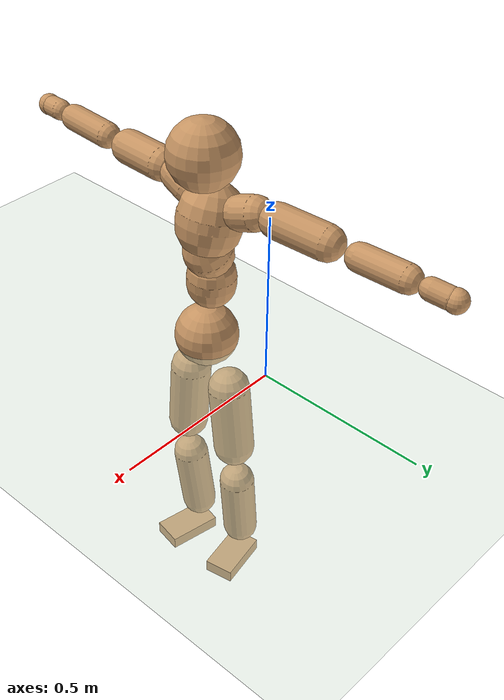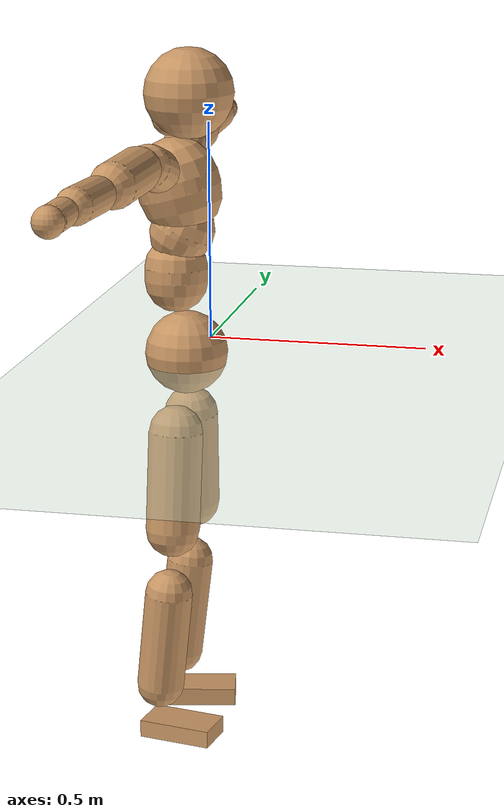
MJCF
<mujoco model="humanoid">
  <compiler coordinate="local"/>
  <default>
    <joint damping="0.0" armature="0.01" stiffness="0.0" limited="true"/>
    <geom conaffinity="1" condim="3" contype="7" margin="0.001" rgba="0.8 0.6 .4 1"/>
  </default>
  <asset>
    <texture type="skybox" builtin="gradient" rgb1=".4 .5 .6" rgb2="0 0 0" width="100" height="100"/>
    <texture builtin="flat" height="1278" mark="cross" markrgb="1 1 1" name="texgeom" random="0.01" rgb1="0.8 0.6 0.4" rgb2="0.8 0.6 0.4" type="cube" width="127"/>
    <texture builtin="checker" height="100" name="texplane" rgb1="0 0 0" rgb2="0.8 0.8 0.8" type="2d" width="100"/>
    <material name="MatPlane" reflectance="0.5" shininess="1" specular="1" texrepeat="60 60" texture="texplane"/>
    <material name="geom" texture="texgeom" texuniform="true"/>
  </asset>
  <worldbody>
    <light cutoff="100" diffuse="1 1 1" dir="-0 0 -1.3" directional="true" exponent="1" pos="0 0 1.3" specular=".1 .1 .1"/>
    <geom conaffinity="1" condim="3" name="floor" pos="0 0 0" rgba="0.8 0.9 0.8 1" size="100 100 .2" type="plane" material="MatPlane"/>
    <body name="Pelvis" pos="-0.0016 -0.2241 0.0246">
      <freejoint name="Pelvis"/>
      <geom type="sphere" contype="1" conaffinity="1" density="500" size="0.0918" pos="0.0000 0.0000 0.0000" name="Pelvis"/>
      <body name="L_Hip" pos="-0.0098 0.0695 -0.0913">
        <joint name="L_Hip_x" type="hinge" pos="0 0 0" axis="1 0 0" stiffness="800" damping="80" armature="0.02" range="-180.0000 180.0000"/>
        <joint name="L_Hip_y" type="hinge" pos="0 0 0" axis="0 1 0" stiffness="800" damping="80" armature="0.02" range="-180.0000 180.0000"/>
        <joint name="L_Hip_z" type="hinge" pos="0 0 0" axis="0 0 1" stiffness="800" damping="80" armature="0.02" range="-180.0000 180.0000"/>
        <geom type="capsule" contype="1" conaffinity="1" density="500" fromto="-0.0008 0.0063 -0.0723 -0.0034 0.0251 -0.2893" size="0.0606" name="L_Hip"/>
        <body name="L_Knee" pos="-0.0042 0.0314 -0.3616">
          <joint name="L_Knee_x" type="hinge" pos="0 0 0" axis="1 0 0" stiffness="800" damping="80" armature="0.02" range="-180.0000 180.0000"/>
          <joint name="L_Knee_y" type="hinge" pos="0 0 0" axis="0 1 0" stiffness="800" damping="80" armature="0.02" range="-180.0000 180.0000"/>
          <joint name="L_Knee_z" type="hinge" pos="0 0 0" axis="0 0 1" stiffness="800" damping="80" armature="0.02" range="-180.0000 180.0000"/>
          <geom type="capsule" contype="1" conaffinity="1" density="500" fromto="-0.0086 -0.0024 -0.0756 -0.0345 -0.0098 -0.3025" size="0.0528" name="L_Knee"/>
          <body name="L_Ankle" pos="-0.0431 -0.0122 -0.3781">
            <joint name="L_Ankle_x" type="hinge" pos="0 0 0" axis="1 0 0" stiffness="800" damping="80" armature="0.02" range="-180.0000 180.0000"/>
            <joint name="L_Ankle_y" type="hinge" pos="0 0 0" axis="0 1 0" stiffness="800" damping="80" armature="0.02" range="-180.0000 180.0000"/>
            <joint name="L_Ankle_z" type="hinge" pos="0 0 0" axis="0 0 1" stiffness="800" damping="80" armature="0.02" range="-180.0000 180.0000"/>
            <geom type="box" contype="1" conaffinity="1" density="500" pos="0.0572 0.0115 -0.0268" size="0.0815 0.0453 0.0201" quat="0.9951 0.0000 0.0000 0.0988" name="L_Ankle"/>
            <body name="L_Toe" pos="0.1144 0.0229 -0.0536">
              <joint name="L_Toe_x" type="hinge" pos="0 0 0" axis="1 0 0" stiffness="500" damping="50" armature="0.02" range="-180.0000 180.0000"/>
              <joint name="L_Toe_y" type="hinge" pos="0 0 0" axis="0 1 0" stiffness="500" damping="50" armature="0.02" range="-180.0000 180.0000"/>
              <joint name="L_Toe_z" type="hinge" pos="0 0 0" axis="0 0 1" stiffness="500" damping="50" armature="0.02" range="-180.0000 180.0000"/>
              <geom type="box" contype="1" conaffinity="1" density="500" pos="0.0000 0.0000 0.0263" size="0.0009 0.0023 0.001" quat="0.9944 0.0000 0.0000 0.1054" name="L_Toe"/>
            </body>
          </body>
        </body>
      </body>
      <body name="R_Hip" pos="-0.0066 -0.0672 -0.0904">
        <joint name="R_Hip_x" type="hinge" pos="0 0 0" axis="1 0 0" stiffness="800" damping="80" armature="0.02" range="-180.0000 180.0000"/>
        <joint name="R_Hip_y" type="hinge" pos="0 0 0" axis="0 1 0" stiffness="800" damping="80" armature="0.02" range="-180.0000 180.0000"/>
        <joint name="R_Hip_z" type="hinge" pos="0 0 0" axis="0 0 1" stiffness="800" damping="80" armature="0.02" range="-180.0000 180.0000"/>
        <geom type="capsule" contype="1" conaffinity="1" density="500" fromto="-0.0015 -0.0072 -0.0738 -0.0059 -0.0289 -0.2954" size="0.0599" name="R_Hip"/>
        <body name="R_Knee" pos="-0.0074 -0.0361 -0.3692">
          <joint name="R_Knee_x" type="hinge" pos="0 0 0" axis="1 0 0" stiffness="800" damping="80" armature="0.02" range="-180.0000 180.0000"/>
          <joint name="R_Knee_y" type="hinge" pos="0 0 0" axis="0 1 0" stiffness="800" damping="80" armature="0.02" range="-180.0000 180.0000"/>
          <joint name="R_Knee_z" type="hinge" pos="0 0 0" axis="0 0 1" stiffness="800" damping="80" armature="0.02" range="-180.0000 180.0000"/>
          <geom type="capsule" contype="1" conaffinity="1" density="500" fromto="-0.0083 0.0029 -0.0757 -0.0333 0.0117 -0.3026" size="0.0531" name="R_Knee"/>
          <body name="R_Ankle" pos="-0.0416 0.0147 -0.3783">
            <joint name="R_Ankle_x" type="hinge" pos="0 0 0" axis="1 0 0" stiffness="800" damping="80" armature="0.02" range="-180.0000 180.0000"/>
            <joint name="R_Ankle_y" type="hinge" pos="0 0 0" axis="0 1 0" stiffness="800" damping="80" armature="0.02" range="-180.0000 180.0000"/>
            <joint name="R_Ankle_z" type="hinge" pos="0 0 0" axis="0 0 1" stiffness="800" damping="80" armature="0.02" range="-180.0000 180.0000"/>
            <geom type="box" contype="1" conaffinity="1" density="500" pos="0.0589 -0.0107 -0.0228" size="0.0828 0.046 0.0196" quat="0.9960 0.0000 0.0000 -0.0898" name="R_Ankle"/>
            <body name="R_Toe" pos="0.1179 -0.0214 -0.0455">
              <joint name="R_Toe_x" type="hinge" pos="0 0 0" axis="1 0 0" stiffness="500" damping="50" armature="0.02" range="-180.0000 180.0000"/>
              <joint name="R_Toe_y" type="hinge" pos="0 0 0" axis="0 1 0" stiffness="500" damping="50" armature="0.02" range="-180.0000 180.0000"/>
              <joint name="R_Toe_z" type="hinge" pos="0 0 0" axis="0 0 1" stiffness="500" damping="50" armature="0.02" range="-180.0000 180.0000"/>
              <geom type="box" contype="1" conaffinity="1" density="500" pos="0.0000 0.0000 0.0247" size="0.0009 0.0023 0.0011" quat="0.9968 0.0000 0.0000 -0.0803" name="R_Toe"/>
            </body>
          </body>
        </body>
      </body>
      <body name="Torso" pos="-0.0215 -0.0026 0.1063">
        <joint name="Torso_x" type="hinge" pos="0 0 0" axis="1 0 0" stiffness="1000" damping="100" armature="0.02" range="-180.0000 180.0000"/>
        <joint name="Torso_y" type="hinge" pos="0 0 0" axis="0 1 0" stiffness="1000" damping="100" armature="0.02" range="-180.0000 180.0000"/>
        <joint name="Torso_z" type="hinge" pos="0 0 0" axis="0 0 1" stiffness="1000" damping="100" armature="0.02" range="-180.0000 180.0000"/>
        <geom type="capsule" contype="1" conaffinity="1" density="500" fromto="0.0003 0.0028 0.0830 0.0002 0.0019 0.0553" size="0.0701" name="Torso"/>
        <body name="Spine" pos="0.0004 0.0047 0.1384">
          <joint name="Spine_x" type="hinge" pos="0 0 0" axis="1 0 0" stiffness="1000" damping="100" armature="0.02" range="-180.0000 180.0000"/>
          <joint name="Spine_y" type="hinge" pos="0 0 0" axis="0 1 0" stiffness="1000" damping="100" armature="0.02" range="-180.0000 180.0000"/>
          <joint name="Spine_z" type="hinge" pos="0 0 0" axis="0 0 1" stiffness="1000" damping="100" armature="0.02" range="-180.0000 180.0000"/>
          <geom type="capsule" contype="1" conaffinity="1" density="500" fromto="0.0163 0.0011 0.0312 0.0109 0.0007 0.0208" size="0.0699" name="Spine"/>
          <body name="Chest" pos="0.0272 0.0018 0.0521">
            <joint name="Chest_x" type="hinge" pos="0 0 0" axis="1 0 0" stiffness="1000" damping="100" armature="0.02" range="-180.0000 180.0000"/>
            <joint name="Chest_y" type="hinge" pos="0 0 0" axis="0 1 0" stiffness="1000" damping="100" armature="0.02" range="-180.0000 180.0000"/>
            <joint name="Chest_z" type="hinge" pos="0 0 0" axis="0 0 1" stiffness="1000" damping="100" armature="0.02" range="-180.0000 180.0000"/>
            <geom type="capsule" contype="1" conaffinity="1" density="500" fromto="-0.0246 -0.0009 0.0884 -0.0164 -0.0006 0.0589" size="0.0921" name="Chest"/>
            <body name="Neck" pos="-0.0471 -0.0024 0.2093">
              <joint name="Neck_x" type="hinge" pos="0 0 0" axis="1 0 0" stiffness="500" damping="50" armature="0.02" range="-180.0000 180.0000"/>
              <joint name="Neck_y" type="hinge" pos="0 0 0" axis="0 1 0" stiffness="500" damping="50" armature="0.02" range="-180.0000 180.0000"/>
              <joint name="Neck_z" type="hinge" pos="0 0 0" axis="0 0 1" stiffness="500" damping="50" armature="0.02" range="-180.0000 180.0000"/>
              <geom type="capsule" contype="1" conaffinity="1" density="500" fromto="0.0102 0.0009 0.0131 0.0409 0.0036 0.0522" size="0.0409" name="Neck"/>
              <body name="Head" pos="0.0511 0.0045 0.0653">
                <joint name="Head_x" type="hinge" pos="0 0 0" axis="1 0 0" stiffness="500" damping="50" armature="0.02" range="-180.0000 180.0000"/>
                <joint name="Head_y" type="hinge" pos="0 0 0" axis="0 1 0" stiffness="500" damping="50" armature="0.02" range="-180.0000 180.0000"/>
                <joint name="Head_z" type="hinge" pos="0 0 0" axis="0 0 1" stiffness="500" damping="50" armature="0.02" range="-180.0000 180.0000"/>
                <geom type="sphere" contype="1" conaffinity="1" density="500" size="0.0983" pos="0.0000 0.0000 0.0000" name="Head"/>
              </body>
            </body>
            <body name="L_Thorax" pos="-0.0354 0.0735 0.1176">
              <joint name="L_Thorax_x" type="hinge" pos="0 0 0" axis="1 0 0" stiffness="500" damping="50" armature="0.02" range="-180.0000 180.0000"/>
              <joint name="L_Thorax_y" type="hinge" pos="0 0 0" axis="0 1 0" stiffness="500" damping="50" armature="0.02" range="-180.0000 180.0000"/>
              <joint name="L_Thorax_z" type="hinge" pos="0 0 0" axis="0 0 1" stiffness="500" damping="50" armature="0.02" range="-180.0000 180.0000"/>
              <geom type="capsule" contype="1" conaffinity="1" density="500" fromto="-0.0014 0.0168 0.0059 -0.0055 0.0672 0.0236" size="0.0486" name="L_Thorax"/>
              <body name="L_Shoulder" pos="-0.0068 0.084 0.0295">
                <joint name="L_Shoulder_x" type="hinge" pos="0 0 0" axis="1 0 0" stiffness="500" damping="50" armature="0.02" range="-720.0000 720.0000"/>
                <joint name="L_Shoulder_y" type="hinge" pos="0 0 0" axis="0 1 0" stiffness="500" damping="50" armature="0.02" range="-720.0000 720.0000"/>
                <joint name="L_Shoulder_z" type="hinge" pos="0 0 0" axis="0 0 1" stiffness="500" damping="50" armature="0.02" range="-720.0000 720.0000"/>
                <geom type="capsule" contype="1" conaffinity="1" density="500" fromto="-0.0053 0.0491 -0.0022 -0.0210 0.1963 -0.0089" size="0.0486" name="L_Shoulder"/>
                <body name="L_Elbow" pos="-0.0263 0.2453 -0.0111">
                  <joint name="L_Elbow_x" type="hinge" pos="0 0 0" axis="1 0 0" stiffness="500" damping="50" armature="0.02" range="-720.0000 720.0000"/>
                  <joint name="L_Elbow_y" type="hinge" pos="0 0 0" axis="0 1 0" stiffness="500" damping="50" armature="0.02" range="-720.0000 720.0000"/>
                  <joint name="L_Elbow_z" type="hinge" pos="0 0 0" axis="0 0 1" stiffness="500" damping="50" armature="0.02" range="-720.0000 720.0000"/>
                  <geom type="capsule" contype="1" conaffinity="1" density="500" fromto="-0.0001 0.0467 0.0016 -0.0005 0.1867 0.0064" size="0.0382" name="L_Elbow"/>
                  <body name="L_Wrist" pos="-0.0007 0.2334 0.008">
                    <joint name="L_Wrist_x" type="hinge" pos="0 0 0" axis="1 0 0" stiffness="300" damping="30" armature="0.02" range="-180.0000 180.0000"/>
                    <joint name="L_Wrist_y" type="hinge" pos="0 0 0" axis="0 1 0" stiffness="300" damping="30" armature="0.02" range="-180.0000 180.0000"/>
                    <joint name="L_Wrist_z" type="hinge" pos="0 0 0" axis="0 0 1" stiffness="300" damping="30" armature="0.02" range="-180.0000 180.0000"/>
                    <geom type="capsule" contype="1" conaffinity="1" density="500" fromto="-0.0027 0.0157 -0.0018 -0.0106 0.0628 -0.0072" size="0.0298" name="L_Wrist"/>
                    <body name="L_Hand" pos="-0.0133 0.0785 -0.009">
                      <joint name="L_Hand_x" type="hinge" pos="0 0 0" axis="1 0 0" stiffness="300" damping="30" armature="0.02" range="-180.0000 180.0000"/>
                      <joint name="L_Hand_y" type="hinge" pos="0 0 0" axis="0 1 0" stiffness="300" damping="30" armature="0.02" range="-180.0000 180.0000"/>
                      <joint name="L_Hand_z" type="hinge" pos="0 0 0" axis="0 0 1" stiffness="300" damping="30" armature="0.02" range="-180.0000 180.0000"/>
                      <geom type="sphere" contype="1" conaffinity="1" density="500" size="0.0317" pos="0.0000 0.0000 0.0000" name="L_Hand"/>
                    </body>
                  </body>
                </body>
              </body>
            </body>
            <body name="R_Thorax" pos="-0.0404 -0.0754 0.1151">
              <joint name="R_Thorax_x" type="hinge" pos="0 0 0" axis="1 0 0" stiffness="500" damping="50" armature="0.02" range="-180.0000 180.0000"/>
              <joint name="R_Thorax_y" type="hinge" pos="0 0 0" axis="0 1 0" stiffness="500" damping="50" armature="0.02" range="-180.0000 180.0000"/>
              <joint name="R_Thorax_z" type="hinge" pos="0 0 0" axis="0 0 1" stiffness="500" damping="50" armature="0.02" range="-180.0000 180.0000"/>
              <geom type="capsule" contype="1" conaffinity="1" density="500" fromto="-0.0018 -0.0177 0.0061 -0.0071 -0.0707 0.0245" size="0.0476" name="R_Thorax"/>
              <body name="R_Shoulder" pos="-0.0089 -0.0884 0.0306">
                <joint name="R_Shoulder_x" type="hinge" pos="0 0 0" axis="1 0 0" stiffness="500" damping="50" armature="0.02" range="-720.0000 720.0000"/>
                <joint name="R_Shoulder_y" type="hinge" pos="0 0 0" axis="0 1 0" stiffness="500" damping="50" armature="0.02" range="-720.0000 720.0000"/>
                <joint name="R_Shoulder_z" type="hinge" pos="0 0 0" axis="0 0 1" stiffness="500" damping="50" armature="0.02" range="-720.0000 720.0000"/>
                <geom type="capsule" contype="1" conaffinity="1" density="500" fromto="-0.0039 -0.0479 -0.0023 -0.0157 -0.1914 -0.0094" size="0.0497" name="R_Shoulder"/>
                <body name="R_Elbow" pos="-0.0196 -0.2393 -0.0117">
                  <joint name="R_Elbow_x" type="hinge" pos="0 0 0" axis="1 0 0" stiffness="500" damping="50" armature="0.02" range="-720.0000 720.0000"/>
                  <joint name="R_Elbow_y" type="hinge" pos="0 0 0" axis="0 1 0" stiffness="500" damping="50" armature="0.02" range="-720.0000 720.0000"/>
                  <joint name="R_Elbow_z" type="hinge" pos="0 0 0" axis="0 0 1" stiffness="500" damping="50" armature="0.02" range="-720.0000 720.0000"/>
                  <geom type="capsule" contype="1" conaffinity="1" density="500" fromto="-0.0010 -0.0480 0.0014 -0.0038 -0.1921 0.0057" size="0.0382" name="R_Elbow"/>
                  <body name="R_Wrist" pos="-0.0048 -0.2401 0.0071">
                    <joint name="R_Wrist_x" type="hinge" pos="0 0 0" axis="1 0 0" stiffness="300" damping="30" armature="0.02" range="-180.0000 180.0000"/>
                    <joint name="R_Wrist_y" type="hinge" pos="0 0 0" axis="0 1 0" stiffness="300" damping="30" armature="0.02" range="-180.0000 180.0000"/>
                    <joint name="R_Wrist_z" type="hinge" pos="0 0 0" axis="0 0 1" stiffness="300" damping="30" armature="0.02" range="-180.0000 180.0000"/>
                    <geom type="capsule" contype="1" conaffinity="1" density="500" fromto="-0.0020 -0.0158 -0.0013 -0.0080 -0.0631 -0.0053" size="0.0304" name="R_Wrist"/>
                    <body name="R_Hand" pos="-0.01 -0.0789 -0.0067">
                      <joint name="R_Hand_x" type="hinge" pos="0 0 0" axis="1 0 0" stiffness="300" damping="30" armature="0.02" range="-180.0000 180.0000"/>
                      <joint name="R_Hand_y" type="hinge" pos="0 0 0" axis="0 1 0" stiffness="300" damping="30" armature="0.02" range="-180.0000 180.0000"/>
                      <joint name="R_Hand_z" type="hinge" pos="0 0 0" axis="0 0 1" stiffness="300" damping="30" armature="0.02" range="-180.0000 180.0000"/>
                      <geom type="sphere" contype="1" conaffinity="1" density="500" size="0.0318" pos="0.0000 0.0000 0.0000" name="R_Hand"/>
                    </body>
                  </body>
                </body>
              </body>
            </body>
          </body>
        </body>
      </body>
    </body>
  </worldbody>
  <actuator>
    <motor name="L_Hip_x" joint="L_Hip_x" gear="500"/>
    <motor name="L_Hip_y" joint="L_Hip_y" gear="500"/>
    <motor name="L_Hip_z" joint="L_Hip_z" gear="500"/>
    <motor name="L_Knee_x" joint="L_Knee_x" gear="500"/>
    <motor name="L_Knee_y" joint="L_Knee_y" gear="500"/>
    <motor name="L_Knee_z" joint="L_Knee_z" gear="500"/>
    <motor name="L_Ankle_x" joint="L_Ankle_x" gear="500"/>
    <motor name="L_Ankle_y" joint="L_Ankle_y" gear="500"/>
    <motor name="L_Ankle_z" joint="L_Ankle_z" gear="500"/>
    <motor name="L_Toe_x" joint="L_Toe_x" gear="500"/>
    <motor name="L_Toe_y" joint="L_Toe_y" gear="500"/>
    <motor name="L_Toe_z" joint="L_Toe_z" gear="500"/>
    <motor name="R_Hip_x" joint="R_Hip_x" gear="500"/>
    <motor name="R_Hip_y" joint="R_Hip_y" gear="500"/>
    <motor name="R_Hip_z" joint="R_Hip_z" gear="500"/>
    <motor name="R_Knee_x" joint="R_Knee_x" gear="500"/>
    <motor name="R_Knee_y" joint="R_Knee_y" gear="500"/>
    <motor name="R_Knee_z" joint="R_Knee_z" gear="500"/>
    <motor name="R_Ankle_x" joint="R_Ankle_x" gear="500"/>
    <motor name="R_Ankle_y" joint="R_Ankle_y" gear="500"/>
    <motor name="R_Ankle_z" joint="R_Ankle_z" gear="500"/>
    <motor name="R_Toe_x" joint="R_Toe_x" gear="500"/>
    <motor name="R_Toe_y" joint="R_Toe_y" gear="500"/>
    <motor name="R_Toe_z" joint="R_Toe_z" gear="500"/>
    <motor name="Torso_x" joint="Torso_x" gear="500"/>
    <motor name="Torso_y" joint="Torso_y" gear="500"/>
    <motor name="Torso_z" joint="Torso_z" gear="500"/>
    <motor name="Spine_x" joint="Spine_x" gear="500"/>
    <motor name="Spine_y" joint="Spine_y" gear="500"/>
    <motor name="Spine_z" joint="Spine_z" gear="500"/>
    <motor name="Chest_x" joint="Chest_x" gear="500"/>
    <motor name="Chest_y" joint="Chest_y" gear="500"/>
    <motor name="Chest_z" joint="Chest_z" gear="500"/>
    <motor name="Neck_x" joint="Neck_x" gear="500"/>
    <motor name="Neck_y" joint="Neck_y" gear="500"/>
    <motor name="Neck_z" joint="Neck_z" gear="500"/>
    <motor name="Head_x" joint="Head_x" gear="500"/>
    <motor name="Head_y" joint="Head_y" gear="500"/>
    <motor name="Head_z" joint="Head_z" gear="500"/>
    <motor name="L_Thorax_x" joint="L_Thorax_x" gear="500"/>
    <motor name="L_Thorax_y" joint="L_Thorax_y" gear="500"/>
    <motor name="L_Thorax_z" joint="L_Thorax_z" gear="500"/>
    <motor name="L_Shoulder_x" joint="L_Shoulder_x" gear="500"/>
    <motor name="L_Shoulder_y" joint="L_Shoulder_y" gear="500"/>
    <motor name="L_Shoulder_z" joint="L_Shoulder_z" gear="500"/>
    <motor name="L_Elbow_x" joint="L_Elbow_x" gear="500"/>
    <motor name="L_Elbow_y" joint="L_Elbow_y" gear="500"/>
    <motor name="L_Elbow_z" joint="L_Elbow_z" gear="500"/>
    <motor name="L_Wrist_x" joint="L_Wrist_x" gear="500"/>
    <motor name="L_Wrist_y" joint="L_Wrist_y" gear="500"/>
    <motor name="L_Wrist_z" joint="L_Wrist_z" gear="500"/>
    <motor name="L_Hand_x" joint="L_Hand_x" gear="500"/>
    <motor name="L_Hand_y" joint="L_Hand_y" gear="500"/>
    <motor name="L_Hand_z" joint="L_Hand_z" gear="500"/>
    <motor name="R_Thorax_x" joint="R_Thorax_x" gear="500"/>
    <motor name="R_Thorax_y" joint="R_Thorax_y" gear="500"/>
    <motor name="R_Thorax_z" joint="R_Thorax_z" gear="500"/>
    <motor name="R_Shoulder_x" joint="R_Shoulder_x" gear="500"/>
    <motor name="R_Shoulder_y" joint="R_Shoulder_y" gear="500"/>
    <motor name="R_Shoulder_z" joint="R_Shoulder_z" gear="500"/>
    <motor name="R_Elbow_x" joint="R_Elbow_x" gear="500"/>
    <motor name="R_Elbow_y" joint="R_Elbow_y" gear="500"/>
    <motor name="R_Elbow_z" joint="R_Elbow_z" gear="500"/>
    <motor name="R_Wrist_x" joint="R_Wrist_x" gear="500"/>
    <motor name="R_Wrist_y" joint="R_Wrist_y" gear="500"/>
    <motor name="R_Wrist_z" joint="R_Wrist_z" gear="500"/>
    <motor name="R_Hand_x" joint="R_Hand_x" gear="500"/>
    <motor name="R_Hand_y" joint="R_Hand_y" gear="500"/>
    <motor name="R_Hand_z" joint="R_Hand_z" gear="500"/>
  </actuator>
  <contact>
    <exclude body1="Torso" body2="Chest"/>
    <exclude body1="Head" body2="Chest"/>
    <exclude body1="R_Knee" body2="R_Toe"/>
    <exclude body1="R_Knee" body2="L_Ankle"/>
    <exclude body1="R_Knee" body2="L_Toe"/>
    <exclude body1="L_Knee" body2="L_Toe"/>
    <exclude body1="L_Knee" body2="R_Ankle"/>
    <exclude body1="L_Knee" body2="R_Toe"/>
    <exclude body1="L_Shoulder" body2="Chest"/>
    <exclude body1="R_Shoulder" body2="Chest"/>
  </contact>
  <sensor/>
  <size njmax="700" nconmax="700"/>
</mujoco>
